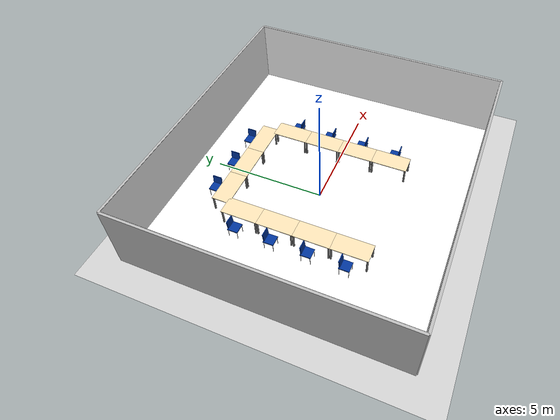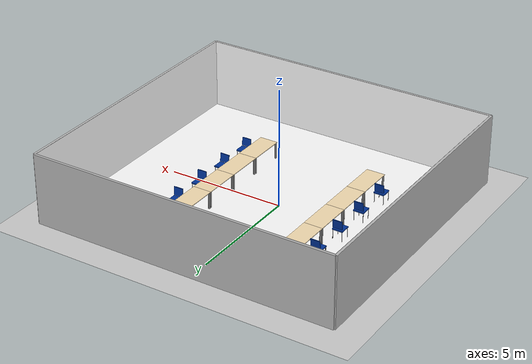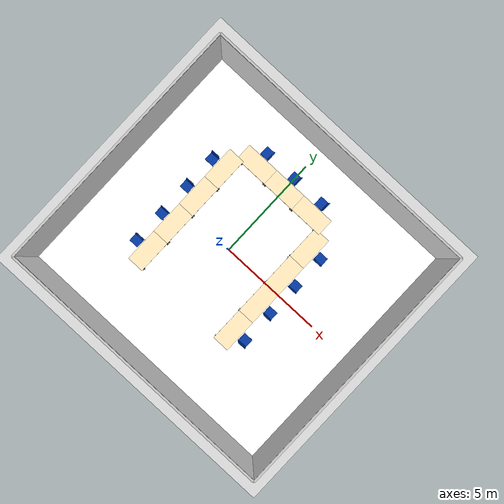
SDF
<sdf version="1.6">
 <world name="cafe">
  <plugin filename="gz-sim-physics-system" name="gz::sim::systems::Physics"/>
  <plugin filename="gz-sim-user-commands-system" name="gz::sim::systems::UserCommands"/>
  <plugin filename="gz-sim-scene-broadcaster-system" name="gz::sim::systems::SceneBroadcaster"/>
  <plugin filename="gz-sim-sensors-system" name="gz::sim::systems::Sensors">
   <render_engine>ogre2</render_engine>
  </plugin>
  <light type="directional" name="sun">
   <pose>0 0 10 0 0 0</pose>
   <diffuse>1 1 1 1</diffuse>
   <direction>-0.5 0.1 -0.9</direction>
  </light>
  <model name="ground_plane">
   <static>true</static>
   <link name="link">
    <collision name="collision">
     <geometry><plane><normal>0 0 1</normal><size>30 30</size></plane></geometry>
    </collision>
    <visual name="visual">
     <geometry><plane><normal>0 0 1</normal><size>30 30</size></plane></geometry>
     <material><ambient>0.8 0.8 0.8 1</ambient><diffuse>0.8 0.8 0.8 1</diffuse></material>
    </visual>
   </link>
  </model>
  <model name="lab_carpet">
   <static>true</static>
   <pose>0.5 0 0.01 0 0 0</pose>
   <link name="link">
    <visual name="visual">
     <geometry><plane><normal>0 0 1</normal><size>13 12</size></plane></geometry>
     <material>
      <diffuse>1 1 1 1</diffuse>
      <pbr><metal><albedo_map>model://cafe_table/materials/textures/Wood_Floor_Dark.jpg</albedo_map></metal></pbr>
     </material>
    </visual>
   </link>
  </model>
  <model name="classroom_walls">
   <static>true</static>
   <link name="link">
    <visual name="w1"><pose>-6 0 1.5 0 0 0</pose><geometry><box><size>0.1 12 3</size></box></geometry></visual>
    <visual name="w2"><pose>7 0 1.5 0 0 0</pose><geometry><box><size>0.1 12 3</size></box></geometry></visual>
    <visual name="w3">
     <pose>0.5 -6 1.5 0 0 1.57</pose>
     <geometry><box><size>0.1 13 3</size></box></geometry>
    </visual>
    <visual name="w4">
     <pose>0.5 6 1.5 0 0 1.57</pose>
     <geometry><box><size>0.1 13 3</size></box></geometry>
    </visual>
    <visual name="logo_w1">
     <pose>-5.94 0 1.5 1.57 0 1.57</pose>
     <geometry><plane><normal>0 0 1</normal><size>12 3</size></plane></geometry>
     <material>
      <diffuse>1 1 1 1</diffuse>
      <pbr><metal><albedo_map>/home/asus/ros2_ws/images.png</albedo_map></metal></pbr>
     </material>
    </visual>
    <visual name="logo_w2">
     <pose>6.94 0 1.5 1.57 0 -1.57</pose>
     <geometry><plane><normal>0 0 1</normal><size>12 3</size></plane></geometry>
     <material>
      <diffuse>1 1 1 1</diffuse>
      <pbr><metal><albedo_map>/home/asus/ros2_ws/images.png</albedo_map></metal></pbr>
     </material>
    </visual>
    <visual name="logo_w3">
     <pose>0.5 -5.94 1.5 1.57 0 3.14</pose>
     <geometry><plane><normal>0 0 1</normal><size>13 3</size></plane></geometry>
     <material>
      <diffuse>1 1 1 1</diffuse>
      <pbr><metal><albedo_map>/home/asus/ros2_ws/images.png</albedo_map></metal></pbr>
     </material>
    </visual>
    <visual name="logo_w4">
     <pose>0.5 5.94 1.5 1.57 0 0</pose>
     <geometry><plane><normal>0 0 1</normal><size>13 3</size></plane></geometry>
     <material>
      <diffuse>1 1 1 1</diffuse>
      <pbr><metal><albedo_map>/home/asus/ros2_ws/images.png</albedo_map></metal></pbr>
     </material>
    </visual>
   </link>
  </model>
  <include><uri>model://real_table</uri><name>t1</name><pose>-2.5 2.4 0 0 0 1.57</pose></include>
  <include><uri>model://real_chair</uri><name>c1</name><pose>-3.2 2.4 0 0 0 1.57</pose></include>
  <include><uri>model://real_table</uri><name>t2</name><pose>-2.5 0.8 0 0 0 1.57</pose></include>
  <include><uri>model://real_chair</uri><name>c2</name><pose>-3.2 0.8 0 0 0 1.57</pose></include>
  <include><uri>model://real_table</uri><name>t3</name><pose>-2.5 -0.8 0 0 0 1.57</pose></include>
  <include><uri>model://real_chair</uri><name>c3</name><pose>-3.2 -0.8 0 0 0 1.57</pose></include>
  <include><uri>model://real_table</uri><name>t4</name><pose>-2.5 -2.4 0 0 0 1.57</pose></include>
  <include><uri>model://real_chair</uri><name>c4</name><pose>-3.2 -2.4 0 0 0 1.57</pose></include>
  <include><uri>model://real_table</uri><name>t5</name><pose>0 3.5 0 0 0 0</pose></include>
  <include><uri>model://real_chair</uri><name>c5</name><pose>0 4.2 0 0 0 0</pose></include>
  <include><uri>model://real_table</uri><name>t10</name><pose>-1.6 3.5 0 0 0 0</pose></include>
  <include><uri>model://real_chair</uri><name>c10</name><pose>-1.6 4.2 0 0 0 0</pose></include>
  <include><uri>model://real_table</uri><name>t11</name><pose>1.6 3.5 0 0 0 0</pose></include>
  <include><uri>model://real_chair</uri><name>c11</name><pose>1.6 4.2 0 0 0 0</pose></include>
  <include><uri>model://real_table</uri><name>t6</name><pose>2.5 2.4 0 0 0 1.57</pose></include>
  <include><uri>model://real_chair</uri><name>c6</name><pose>3.2 2.4 0 0 0 -1.57</pose></include>
  <include><uri>model://real_table</uri><name>t7</name><pose>2.5 0.8 0 0 0 1.57</pose></include>
  <include><uri>model://real_chair</uri><name>c7</name><pose>3.2 0.8 0 0 0 -1.57</pose></include>
  <include><uri>model://real_table</uri><name>t8</name><pose>2.5 -0.8 0 0 0 1.57</pose></include>
  <include><uri>model://real_chair</uri><name>c8</name><pose>3.2 -0.8 0 0 0 -1.57</pose></include>
  <include><uri>model://real_table</uri><name>t9</name><pose>2.5 -2.4 0 0 0 1.57</pose></include>
  <include><uri>model://real_chair</uri><name>c9</name><pose>3.2 -2.4 0 0 0 -1.57</pose></include>
 </world>
</sdf>

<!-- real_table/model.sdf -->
<sdf version="1.6">
  <model name="real_table">
    <static>true</static>
    <link name="link">
      <!-- Plateau de table -->
      <visual name="plateau">
        <pose>0 0 0.73 0 0 0</pose>
        <geometry><box><size>1.6 0.8 0.03</size></box></geometry>
        <material>
          <ambient>0.96 0.87 0.70 1</ambient>
          <diffuse>0.96 0.87 0.70 1</diffuse>
          <specular>0.1 0.1 0.1 1</specular>
        </material>
      </visual>

      <!-- Pieds élargis (visual uniquement) -->
      <visual name="p1">
        <pose>0.75 0.35 0.35 0 0 0</pose>
        <geometry><cylinder><radius>0.04</radius><length>0.7</length></cylinder></geometry>
        <material><ambient>0.4 0.4 0.4 1</ambient><diffuse>0.4 0.4 0.4 1</diffuse></material>
      </visual>
      <visual name="p2">
        <pose>0.75 -0.35 0.35 0 0 0</pose>
        <geometry><cylinder><radius>0.04</radius><length>0.7</length></cylinder></geometry>
        <material><ambient>0.4 0.4 0.4 1</ambient><diffuse>0.4 0.4 0.4 1</diffuse></material>
      </visual>
      <visual name="p3">
        <pose>-0.75 0.35 0.35 0 0 0</pose>
        <geometry><cylinder><radius>0.04</radius><length>0.7</length></cylinder></geometry>
        <material><ambient>0.4 0.4 0.4 1</ambient><diffuse>0.4 0.4 0.4 1</diffuse></material>
      </visual>
      <visual name="p4">
        <pose>-0.75 -0.35 0.35 0 0 0</pose>
        <geometry><cylinder><radius>0.04</radius><length>0.7</length></cylinder></geometry>
        <material><ambient>0.4 0.4 0.4 1</ambient><diffuse>0.4 0.4 0.4 1</diffuse></material>
      </visual>

      <!-- COLLISION UNIQUEMENT sur le plateau (pas de collision sur les pieds) -->
      <!-- Cela permet au robot de passer sous la table sans être bloqué par les pieds -->
      <collision name="collision_top">
        <pose>0 0 0.73 0 0 0</pose>
        <geometry><box><size>1.6 0.8 0.05</size></box></geometry>
      </collision>

      <!-- Option 2 : Si vous voulez que les pieds aient aussi des collisions (robot ne passe pas entre) -->
      <!-- Décommentez les lignes suivantes pour activer les collisions sur les pieds -->
    </link>
  </model>
</sdf>

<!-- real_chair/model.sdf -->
<sdf version="1.6">
  <model name="real_chair">
    <static>true</static>
    <link name="link">
      <visual name="assise">
        <pose>0 0 0.45 0 0 0</pose>
        <geometry><box><size>0.45 0.45 0.05</size></box></geometry>
        <material><ambient>0 0.2 0.6 1</ambient><diffuse>0 0.2 0.6 1</diffuse></material>
      </visual>
      <visual name="dossier">
        <pose>0.2 0 0.7 0 0.1 0</pose>
        <geometry><box><size>0.04 0.4 0.35</size></box></geometry>
        <material><ambient>0 0.2 0.6 1</ambient><diffuse>0 0.2 0.6 1</diffuse></material>
      </visual>
      <visual name="p1"><pose>0.2 0.2 0.22 0 0 0</pose><geometry><cylinder><radius>0.01</radius><length>0.45</length></cylinder></geometry><material><ambient>0 0 0 1</ambient></material></visual>
      <visual name="p2"><pose>0.2 -0.2 0.22 0 0 0</pose><geometry><cylinder><radius>0.01</radius><length>0.45</length></cylinder></geometry><material><ambient>0 0 0 1</ambient></material></visual>
      <visual name="p3"><pose>-0.2 0.2 0.22 0 0 0</pose><geometry><cylinder><radius>0.01</radius><length>0.45</length></cylinder></geometry><material><ambient>0 0 0 1</ambient></material></visual>
      <visual name="p4"><pose>-0.2 -0.2 0.22 0 0 0</pose><geometry><cylinder><radius>0.01</radius><length>0.45</length></cylinder></geometry><material><ambient>0 0 0 1</ambient></material></visual>
    </link>
  </model>
</sdf>
